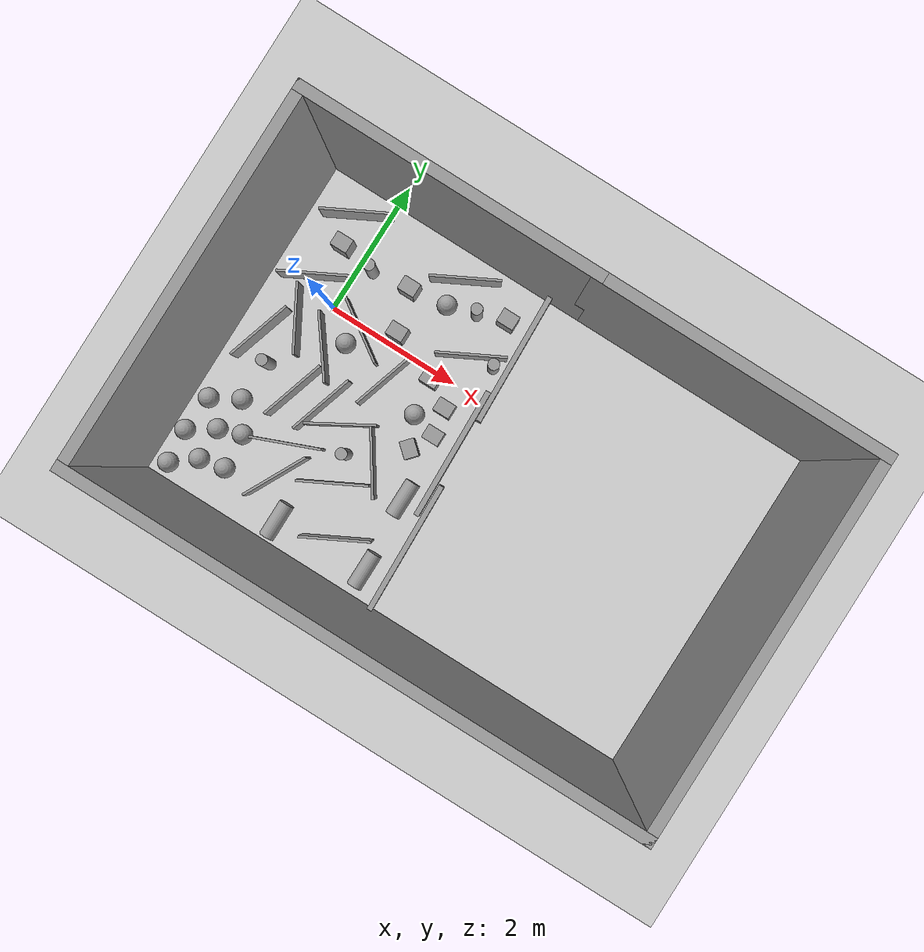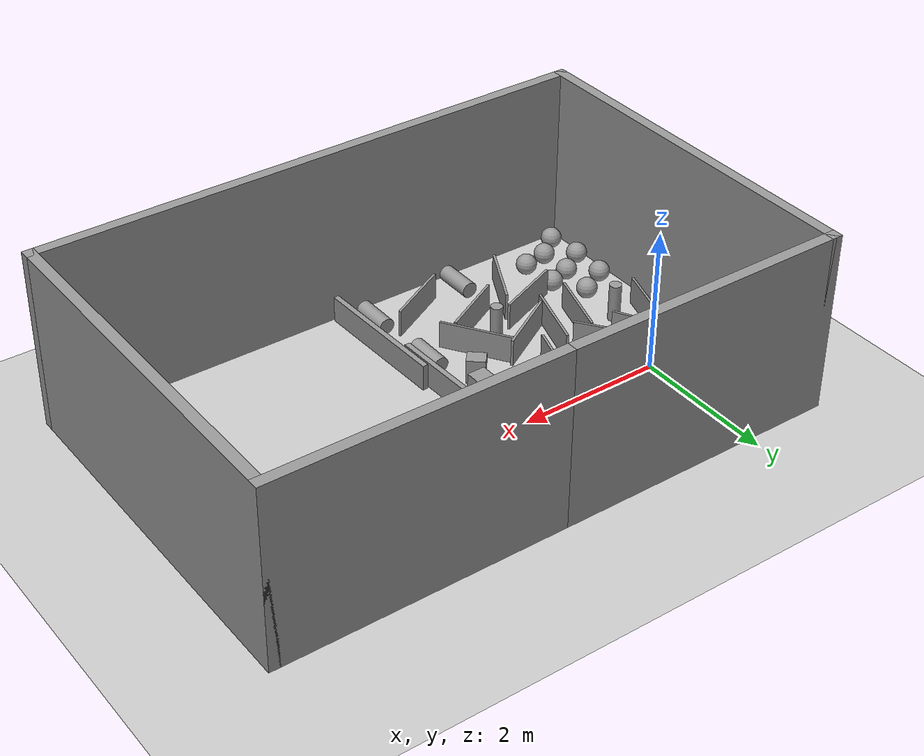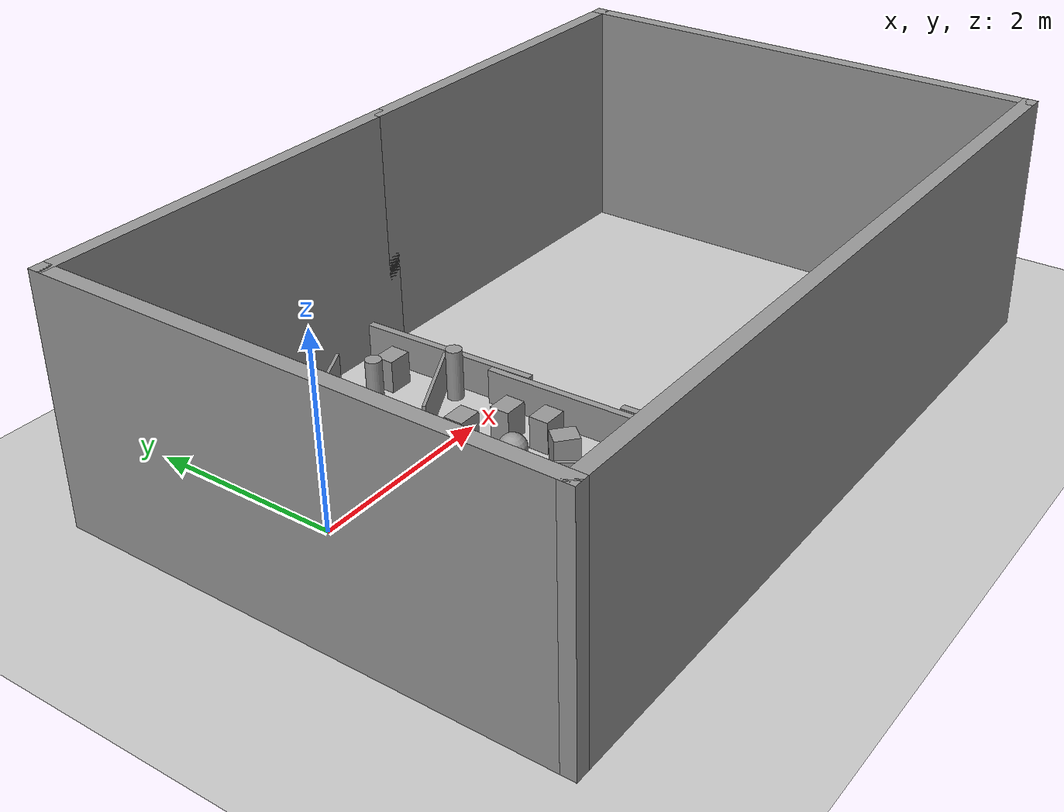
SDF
<sdf version="1.7">
 <world name="default">
  <light name="sun" type="directional">
   <pose>0 0 10 0 -0 0</pose>
   <diffuse>0.8 0.8 0.8 1</diffuse>
   <specular>0.2 0.2 0.2 1</specular>
   <attenuation>
    <range>1000</range>
    <constant>0.9</constant>
    <linear>0.01</linear>
    <quadratic>0.001</quadratic>
   </attenuation>
   <direction>-0.5 0.1 -0.9</direction>
   <spot><inner_angle>0</inner_angle><outer_angle>0</outer_angle><falloff>0</falloff></spot>
  </light>
  <model name="ground_plane">
   <static>1</static>
   <link name="link">
    <collision name="collision">
     <geometry><plane><normal>0 0 1</normal><size>100 100</size></plane></geometry>
     <surface>
      <contact><collide_bitmask>65535</collide_bitmask></contact>
      <friction><ode><mu>100</mu><mu2>50</mu2></ode></friction>
     </surface>
    </collision>
    <visual name="visual">
     <cast_shadows>0</cast_shadows>
     <geometry><plane><normal>0 0 1</normal><size>100 100</size></plane></geometry>
     <material>
      <script><uri>file://media/materials/scripts/gazebo.material</uri><name>Gazebo/Grey</name></script>
     </material>
    </visual>
   </link>
  </model>
  <gravity>0 0 -9.8</gravity>
  <magnetic_field>6e-06 2.3e-05 -4.2e-05</magnetic_field>
  <atmosphere type="adiabatic"/>
  <physics type="ode">
   <max_step_size>0.001</max_step_size>
   <real_time_factor>1</real_time_factor>
   <real_time_update_rate>1000</real_time_update_rate>
  </physics>
  <scene><ambient>0.4 0.4 0.4 1</ambient><background>0.7 0.7 0.7 1</background><shadows>1</shadows></scene>
  <spherical_coordinates>
   <surface_model>EARTH_WGS84</surface_model>
   <latitude_deg>0</latitude_deg>
   <longitude_deg>0</longitude_deg>
   <elevation>0</elevation>
   <heading_deg>0</heading_deg>
  </spherical_coordinates>
  <model name="Untitled">
   <pose>2.82907 -0.789579 0 0 -0 0</pose>
   <link name="Wall_1">
    <collision name="Wall_1_Collision">
     <geometry><box><size>4 0.15 2.5</size></box></geometry>
     <pose>0 0 1.25 0 -0 0</pose>
    </collision>
    <visual name="Wall_1_Visual">
     <pose>0 0 1.25 0 -0 0</pose>
     <geometry><box><size>4 0.15 2.5</size></box></geometry>
     <material>
      <script><uri>file://media/materials/scripts/gazebo.material</uri><name>Gazebo/Grey</name></script>
      <ambient>1 1 1 1</ambient>
     </material>
     <meta><layer>0</layer></meta>
    </visual>
    <pose>2 2.55 0 0 -0 0</pose>
   </link>
   <link name="Wall_2">
    <collision name="Wall_2_Collision">
     <geometry><box><size>5.25 0.15 2.5</size></box></geometry>
     <pose>0 0 1.25 0 -0 0</pose>
    </collision>
    <visual name="Wall_2_Visual">
     <pose>0 0 1.25 0 -0 0</pose>
     <geometry><box><size>5.25 0.15 2.5</size></box></geometry>
     <material>
      <script><uri>file://media/materials/scripts/gazebo.material</uri><name>Gazebo/Grey</name></script>
      <ambient>1 1 1 1</ambient>
     </material>
     <meta><layer>0</layer></meta>
    </visual>
    <pose>3.925 -0 0 0 -0 -1.5708</pose>
   </link>
   <link name="Wall_3">
    <collision name="Wall_3_Collision">
     <geometry><box><size>8 0.15 2.5</size></box></geometry>
     <pose>0 0 1.25 0 -0 0</pose>
    </collision>
    <visual name="Wall_3_Visual">
     <pose>0 0 1.25 0 -0 0</pose>
     <geometry><box><size>8 0.15 2.5</size></box></geometry>
     <material>
      <script><uri>file://media/materials/scripts/gazebo.material</uri><name>Gazebo/Grey</name></script>
      <ambient>1 1 1 1</ambient>
     </material>
     <meta><layer>0</layer></meta>
    </visual>
    <pose>0 -2.55 0 0 -0 3.14159</pose>
   </link>
   <link name="Wall_4">
    <collision name="Wall_4_Collision">
     <geometry><box><size>5.25 0.15 2.5</size></box></geometry>
     <pose>0 0 1.25 0 -0 0</pose>
    </collision>
    <visual name="Wall_4_Visual">
     <pose>0 0 1.25 0 -0 0</pose>
     <geometry><box><size>5.25 0.15 2.5</size></box></geometry>
     <material>
      <script><uri>file://media/materials/scripts/gazebo.material</uri><name>Gazebo/Grey</name></script>
      <ambient>1 1 1 1</ambient>
     </material>
     <meta><layer>0</layer></meta>
    </visual>
    <pose>-3.925 -0 0 0 -0 1.5708</pose>
   </link>
   <link name="Wall_5">
    <collision name="Wall_5_Collision">
     <geometry><box><size>4.15 0.15 2.5</size></box></geometry>
     <pose>0 0 1.25 0 -0 0</pose>
    </collision>
    <visual name="Wall_5_Visual">
     <pose>0 0 1.25 0 -0 0</pose>
     <geometry><box><size>4.15 0.15 2.5</size></box></geometry>
     <material>
      <script><uri>file://media/materials/scripts/gazebo.material</uri><name>Gazebo/Grey</name></script>
      <ambient>1 1 1 1</ambient>
     </material>
     <meta><layer>0</layer></meta>
    </visual>
    <pose>-1.925 2.55 0 0 -0 0</pose>
   </link>
   <static>1</static>
  </model>
  <model name="unit_box">
   <pose>0.781014 0.787474 0.172363 2e-06 3e-06 4.9e-05</pose>
   <link name="link">
    <inertial>
     <mass>1</mass>
     <inertia>
      <ixx>0.166667</ixx>
      <ixy>0</ixy>
      <ixz>0</ixz>
      <iyy>0.166667</iyy>
      <iyz>0</iyz>
      <izz>0.166667</izz>
     </inertia>
    </inertial>
    <collision name="collision">
     <geometry><box><size>0.254847 0.209614 0.344725</size></box></geometry>
    </collision>
    <visual name="visual">
     <geometry><box><size>0.254847 0.209614 0.344725</size></box></geometry>
     <material>
      <script><name>Gazebo/Grey</name><uri>file://media/materials/scripts/gazebo.material</uri></script>
     </material>
    </visual>
   </link>
  </model>
  <model name="unit_box_0_clone">
   <pose>0.211839 -0.54558 0.194903 -5.1e-05 -0 -0.933075</pose>
   <link name="link">
    <inertial>
     <mass>1</mass>
     <inertia>
      <ixx>0.166667</ixx>
      <ixy>0</ixy>
      <ixz>0</ixz>
      <iyy>0.166667</iyy>
      <iyz>0</iyz>
      <izz>0.166667</izz>
     </inertia>
    </inertial>
    <collision name="collision"><geometry><box><size>1 0.0335772 0.389805</size></box></geometry></collision>
    <visual name="visual">
     <geometry><box><size>1 0.0335772 0.389805</size></box></geometry>
     <material>
      <script><name>Gazebo/Grey</name><uri>file://media/materials/scripts/gazebo.material</uri></script>
     </material>
    </visual>
   </link>
  </model>
  <model name="unit_box_0_clone_clone_0">
   <pose>0.532205 -0.073878 0.194903 -3e-06 0 -0.593459</pose>
   <link name="link">
    <inertial>
     <mass>1</mass>
     <inertia>
      <ixx>0.166667</ixx>
      <ixy>0</ixy>
      <ixz>0</ixz>
      <iyy>0.166667</iyy>
      <iyz>0</iyz>
      <izz>0.166667</izz>
     </inertia>
    </inertial>
    <collision name="collision"><geometry><box><size>1 0.033577 0.389805</size></box></geometry></collision>
    <visual name="visual">
     <geometry><box><size>1 0.033577 0.389805</size></box></geometry>
     <material>
      <script><name>Gazebo/Grey</name><uri>file://media/materials/scripts/gazebo.material</uri></script>
     </material>
    </visual>
   </link>
  </model>
  <model name="unit_box_0_clone_clone_0_clone">
   <pose>0.624756 -1.22139 0.194903 -3e-06 -0 -1.87227</pose>
   <link name="link">
    <inertial>
     <mass>1</mass>
     <inertia>
      <ixx>0.166667</ixx>
      <ixy>0</ixy>
      <ixz>0</ixz>
      <iyy>0.166667</iyy>
      <iyz>0</iyz>
      <izz>0.166667</izz>
     </inertia>
    </inertial>
    <collision name="collision"><geometry><box><size>1 0.033577 0.389805</size></box></geometry></collision>
    <visual name="visual">
     <geometry><box><size>1 0.033577 0.389805</size></box></geometry>
     <material>
      <script><name>Gazebo/Grey</name><uri>file://media/materials/scripts/gazebo.material</uri></script>
     </material>
    </visual>
   </link>
  </model>
  <model name="unit_box_0_clone_clone_0_clone_clone">
   <pose>1.17289 -0.46809 0.194902 -2e-06 -0 -1.87231</pose>
   <link name="link">
    <inertial>
     <mass>1</mass>
     <inertia>
      <ixx>0.166667</ixx>
      <ixy>0</ixy>
      <ixz>0</ixz>
      <iyy>0.166667</iyy>
      <iyz>0</iyz>
      <izz>0.166667</izz>
     </inertia>
    </inertial>
    <collision name="collision"><geometry><box><size>1 0.033577 0.389805</size></box></geometry></collision>
    <visual name="visual">
     <geometry><box><size>1 0.033577 0.389805</size></box></geometry>
     <material>
      <script><name>Gazebo/Grey</name><uri>file://media/materials/scripts/gazebo.material</uri></script>
     </material>
    </visual>
   </link>
  </model>
  <model name="unit_box_clone">
   <pose>0.968215 0.178588 0.172363 -2e-06 2e-06 -4.1e-05</pose>
   <link name="link">
    <inertial>
     <mass>1</mass>
     <inertia>
      <ixx>0.166667</ixx>
      <ixy>0</ixy>
      <ixz>0</ixz>
      <iyy>0.166667</iyy>
      <iyz>0</iyz>
      <izz>0.166667</izz>
     </inertia>
    </inertial>
    <collision name="collision">
     <geometry><box><size>0.254847 0.209614 0.344725</size></box></geometry>
    </collision>
    <visual name="visual">
     <geometry><box><size>0.254847 0.209614 0.344725</size></box></geometry>
     <material>
      <script><name>Gazebo/Grey</name><uri>file://media/materials/scripts/gazebo.material</uri></script>
     </material>
    </visual>
   </link>
  </model>
  <model name="unit_box_clone_0">
   <pose>-0.321618 0.810767 0.172363 3e-06 -1e-06 1.6e-05</pose>
   <link name="link">
    <inertial>
     <mass>1</mass>
     <inertia>
      <ixx>0.166667</ixx>
      <ixy>0</ixy>
      <ixz>0</ixz>
      <iyy>0.166667</iyy>
      <iyz>0</iyz>
      <izz>0.166667</izz>
     </inertia>
    </inertial>
    <collision name="collision">
     <geometry><box><size>0.254847 0.209614 0.344725</size></box></geometry>
    </collision>
    <visual name="visual">
     <geometry><box><size>0.254847 0.209614 0.344725</size></box></geometry>
     <material>
      <script><name>Gazebo/Grey</name><uri>file://media/materials/scripts/gazebo.material</uri></script>
     </material>
    </visual>
   </link>
  </model>
  <light name="user_point_light_0" type="point">
   <pose>-0.771318 -3.00558 1 0 -0 0</pose>
   <diffuse>0.5 0.5 0.5 1</diffuse>
   <specular>0.1 0.1 0.1 1</specular>
   <attenuation>
    <range>20</range>
    <constant>0.5</constant>
    <linear>0.01</linear>
    <quadratic>0.001</quadratic>
   </attenuation>
   <cast_shadows>0</cast_shadows>
   <direction>0 0 -1</direction>
  </light>
  <light name="user_point_light_2" type="point">
   <pose>6.28082 -2.53213 1 0 -0 0</pose>
   <diffuse>0.5 0.5 0.5 1</diffuse>
   <specular>0.1 0.1 0.1 1</specular>
   <attenuation>
    <range>20</range>
    <constant>0.5</constant>
    <linear>0.01</linear>
    <quadratic>0.001</quadratic>
   </attenuation>
   <cast_shadows>0</cast_shadows>
   <direction>0 0 -1</direction>
  </light>
  <light name="user_point_light_3" type="point">
   <pose>5.72971 1.0461 1 0 -0 0</pose>
   <diffuse>0.5 0.5 0.5 1</diffuse>
   <specular>0.1 0.1 0.1 1</specular>
   <attenuation>
    <range>20</range>
    <constant>0.5</constant>
    <linear>0.01</linear>
    <quadratic>0.001</quadratic>
   </attenuation>
   <cast_shadows>0</cast_shadows>
   <direction>0 0 -1</direction>
  </light>
  <model name="unit_cylinder">
   <pose>2.33911 0.479942 0.269148 0 -0 4.8e-05</pose>
   <link name="link">
    <inertial>
     <mass>1</mass>
     <inertia><ixx>0.145833</ixx><ixy>0</ixy><ixz>0</ixz><iyy>0.145833</iyy><iyz>0</iyz><izz>0.125</izz></inertia>
    </inertial>
    <collision name="collision">
     <geometry><cylinder><radius>0.083259</radius><length>0.538297</length></cylinder></geometry>
    </collision>
    <visual name="visual">
     <geometry><cylinder><radius>0.083259</radius><length>0.538297</length></cylinder></geometry>
     <material>
      <script><name>Gazebo/Grey</name><uri>file://media/materials/scripts/gazebo.material</uri></script>
     </material>
    </visual>
   </link>
  </model>
  <model name="unit_cylinder_clone">
   <pose>0.199851 0.721807 0.269139 0 -0 4.8e-05</pose>
   <link name="link">
    <inertial>
     <mass>1</mass>
     <inertia><ixx>0.145833</ixx><ixy>0</ixy><ixz>0</ixz><iyy>0.145833</iyy><iyz>0</iyz><izz>0.125</izz></inertia>
    </inertial>
    <collision name="collision">
     <geometry><cylinder><radius>0.0832591</radius><length>0.538297</length></cylinder></geometry>
    </collision>
    <visual name="visual">
     <geometry><cylinder><radius>0.0832591</radius><length>0.538297</length></cylinder></geometry>
     <material>
      <script><name>Gazebo/Grey</name><uri>file://media/materials/scripts/gazebo.material</uri></script>
     </material>
    </visual>
   </link>
  </model>
  <model name="unit_box_0_clone_clone_0_clone_clone_clone">
   <pose>-0.63259 -0.81797 0.194903 1e-06 -0 -1.87229</pose>
   <link name="link">
    <inertial>
     <mass>1</mass>
     <inertia>
      <ixx>0.166667</ixx>
      <ixy>0</ixy>
      <ixz>0</ixz>
      <iyy>0.166667</iyy>
      <iyz>0</iyz>
      <izz>0.166667</izz>
     </inertia>
    </inertial>
    <collision name="collision"><geometry><box><size>1 0.033577 0.389805</size></box></geometry></collision>
    <visual name="visual">
     <geometry><box><size>1 0.033577 0.389805</size></box></geometry>
     <material>
      <script><name>Gazebo/Grey</name><uri>file://media/materials/scripts/gazebo.material</uri></script>
     </material>
    </visual>
   </link>
  </model>
  <model name="unit_box_0_clone_clone_0_clone_clone_clone_0">
   <pose>0.189195 -1.26043 0.194903 -1.3e-05 -0 -1.87231</pose>
   <link name="link">
    <inertial>
     <mass>1</mass>
     <inertia>
      <ixx>0.166667</ixx>
      <ixy>0</ixy>
      <ixz>0</ixz>
      <iyy>0.166667</iyy>
      <iyz>0</iyz>
      <izz>0.166667</izz>
     </inertia>
    </inertial>
    <collision name="collision"><geometry><box><size>1 0.033577 0.389805</size></box></geometry></collision>
    <visual name="visual">
     <geometry><box><size>1 0.033577 0.389805</size></box></geometry>
     <material>
      <script><name>Gazebo/Grey</name><uri>file://media/materials/scripts/gazebo.material</uri></script>
     </material>
    </visual>
   </link>
  </model>
  <model name="unit_box_0_clone_clone_0_clone_clone_clone_1">
   <pose>-0.298541 -0.406971 0.194903 5e-06 0 -1.06347</pose>
   <link name="link">
    <inertial>
     <mass>1</mass>
     <inertia>
      <ixx>0.166667</ixx>
      <ixy>0</ixy>
      <ixz>0</ixz>
      <iyy>0.166667</iyy>
      <iyz>0</iyz>
      <izz>0.166667</izz>
     </inertia>
    </inertial>
    <collision name="collision"><geometry><box><size>1 0.033577 0.389805</size></box></geometry></collision>
    <visual name="visual">
     <geometry><box><size>1 0.033577 0.389805</size></box></geometry>
     <material>
      <script><name>Gazebo/Grey</name><uri>file://media/materials/scripts/gazebo.material</uri></script>
     </material>
    </visual>
   </link>
  </model>
  <model name="unit_box_0_clone_clone_0_clone_clone_clone_2">
   <pose>0.989117 -1.31311 0.194903 -9e-06 0 -2.61526</pose>
   <link name="link">
    <inertial>
     <mass>1</mass>
     <inertia>
      <ixx>0.166667</ixx>
      <ixy>0</ixy>
      <ixz>0</ixz>
      <iyy>0.166667</iyy>
      <iyz>0</iyz>
      <izz>0.166667</izz>
     </inertia>
    </inertial>
    <collision name="collision"><geometry><box><size>1 0.033577 0.389805</size></box></geometry></collision>
    <visual name="visual">
     <geometry><box><size>1 0.033577 0.389805</size></box></geometry>
     <material>
      <script><name>Gazebo/Grey</name><uri>file://media/materials/scripts/gazebo.material</uri></script>
     </material>
    </visual>
   </link>
  </model>
  <model name="unit_box_0">
   <pose>2.50207 -0.833229 0.184296 1e-06 4.4e-05 -1.53859</pose>
   <link name="link">
    <inertial>
     <mass>1</mass>
     <inertia>
      <ixx>0.166667</ixx>
      <ixy>0</ixy>
      <ixz>0</ixz>
      <iyy>0.166667</iyy>
      <iyz>0</iyz>
      <izz>0.166667</izz>
     </inertia>
    </inertial>
    <collision name="collision"><geometry><box><size>1.9549 0.075737 0.368678</size></box></geometry></collision>
    <visual name="visual">
     <geometry><box><size>1.9549 0.075737 0.368678</size></box></geometry>
     <material>
      <script><name>Gazebo/Grey</name><uri>file://media/materials/scripts/gazebo.material</uri></script>
     </material>
    </visual>
   </link>
  </model>
  <model name="unit_box_0_clone_0">
   <pose>2.52996 0.707218 0.184296 -1e-06 4.4e-05 -1.53396</pose>
   <link name="link">
    <inertial>
     <mass>1</mass>
     <inertia>
      <ixx>0.166667</ixx>
      <ixy>0</ixy>
      <ixz>0</ixz>
      <iyy>0.166667</iyy>
      <iyz>0</iyz>
      <izz>0.166667</izz>
     </inertia>
    </inertial>
    <collision name="collision"><geometry><box><size>1.9549 0.075737 0.368678</size></box></geometry></collision>
    <visual name="visual">
     <geometry><box><size>1.9549 0.075737 0.368678</size></box></geometry>
     <material>
      <script><name>Gazebo/Grey</name><uri>file://media/materials/scripts/gazebo.material</uri></script>
     </material>
    </visual>
   </link>
  </model>
  <model name="unit_box_0_clone_1">
   <pose>2.64755 -2.26281 0.184296 -1e-06 -4.4e-05 -1.53854</pose>
   <link name="link">
    <inertial>
     <mass>1</mass>
     <inertia>
      <ixx>0.166667</ixx>
      <ixy>0</ixy>
      <ixz>0</ixz>
      <iyy>0.166667</iyy>
      <iyz>0</iyz>
      <izz>0.166667</izz>
     </inertia>
    </inertial>
    <collision name="collision"><geometry><box><size>1.9549 0.075737 0.368678</size></box></geometry></collision>
    <visual name="visual">
     <geometry><box><size>1.9549 0.075737 0.368678</size></box></geometry>
     <material>
      <script><name>Gazebo/Grey</name><uri>file://media/materials/scripts/gazebo.material</uri></script>
     </material>
    </visual>
   </link>
  </model>
  <model name="unit_cylinder_clone_0">
   <pose>1.75106 0.989606 0.269139 0 -0 4.8e-05</pose>
   <link name="link">
    <inertial>
     <mass>1</mass>
     <inertia><ixx>0.145833</ixx><ixy>0</ixy><ixz>0</ixz><iyy>0.145833</iyy><iyz>0</iyz><izz>0.125</izz></inertia>
    </inertial>
    <collision name="collision">
     <geometry><cylinder><radius>0.0832591</radius><length>0.538297</length></cylinder></geometry>
    </collision>
    <visual name="visual">
     <geometry><cylinder><radius>0.0832591</radius><length>0.538297</length></cylinder></geometry>
     <material>
      <script><name>Gazebo/Grey</name><uri>file://media/materials/scripts/gazebo.material</uri></script>
     </material>
    </visual>
   </link>
  </model>
  <model name="unit_cylinder_clone_1">
   <pose>-0.337686 -1.13204 0.269148 0 -0 4.8e-05</pose>
   <link name="link">
    <inertial>
     <mass>1</mass>
     <inertia><ixx>0.145833</ixx><ixy>0</ixy><ixz>0</ixz><iyy>0.145833</iyy><iyz>0</iyz><izz>0.125</izz></inertia>
    </inertial>
    <collision name="collision">
     <geometry><cylinder><radius>0.0832591</radius><length>0.538297</length></cylinder></geometry>
    </collision>
    <visual name="visual">
     <geometry><cylinder><radius>0.0832591</radius><length>0.538297</length></cylinder></geometry>
     <material>
      <script><name>Gazebo/Grey</name><uri>file://media/materials/scripts/gazebo.material</uri></script>
     </material>
    </visual>
   </link>
  </model>
  <model name="unit_sphere">
   <pose>1.76189 -0.655911 0.143711 0 -0 0</pose>
   <link name="link">
    <inertial>
     <mass>1</mass>
     <inertia><ixx>0.1</ixx><ixy>0</ixy><ixz>0</ixz><iyy>0.1</iyy><iyz>0</iyz><izz>0.1</izz></inertia>
    </inertial>
    <collision name="collision"><geometry><sphere><radius>0.143711</radius></sphere></geometry></collision>
    <visual name="visual">
     <geometry><sphere><radius>0.143711</radius></sphere></geometry>
     <material>
      <script><name>Gazebo/Grey</name><uri>file://media/materials/scripts/gazebo.material</uri></script>
     </material>
    </visual>
   </link>
  </model>
  <model name="unit_sphere_clone">
   <pose>1.33525 0.871773 0.143711 0 -0 0</pose>
   <link name="link">
    <inertial>
     <mass>1</mass>
     <inertia><ixx>0.1</ixx><ixy>0</ixy><ixz>0</ixz><iyy>0.1</iyy><iyz>0</iyz><izz>0.1</izz></inertia>
    </inertial>
    <collision name="collision"><geometry><sphere><radius>0.143711</radius></sphere></geometry></collision>
    <visual name="visual">
     <geometry><sphere><radius>0.143711</radius></sphere></geometry>
     <material>
      <script><name>Gazebo/Grey</name><uri>file://media/materials/scripts/gazebo.material</uri></script>
     </material>
    </visual>
   </link>
  </model>
  <model name="unit_sphere_clone_0">
   <pose>0.428223 -0.327342 0.143711 0 -0 0</pose>
   <link name="link">
    <inertial>
     <mass>1</mass>
     <inertia><ixx>0.1</ixx><ixy>0</ixy><ixz>0</ixz><iyy>0.1</iyy><iyz>0</iyz><izz>0.1</izz></inertia>
    </inertial>
    <collision name="collision"><geometry><sphere><radius>0.143711</radius></sphere></geometry></collision>
    <visual name="visual">
     <geometry><sphere><radius>0.143711</radius></sphere></geometry>
     <material>
      <script><name>Gazebo/Grey</name><uri>file://media/materials/scripts/gazebo.material</uri></script>
     </material>
    </visual>
   </link>
  </model>
  <model name="unit_sphere_clone_1">
   <pose>-0.44011 -2.76101 0.143711 0 -0 0</pose>
   <link name="link">
    <inertial>
     <mass>1</mass>
     <inertia><ixx>0.1</ixx><ixy>0</ixy><ixz>0</ixz><iyy>0.1</iyy><iyz>0</iyz><izz>0.1</izz></inertia>
    </inertial>
    <collision name="collision"><geometry><sphere><radius>0.143711</radius></sphere></geometry></collision>
    <visual name="visual">
     <geometry><sphere><radius>0.143711</radius></sphere></geometry>
     <material>
      <script><name>Gazebo/Grey</name><uri>file://media/materials/scripts/gazebo.material</uri></script>
     </material>
    </visual>
   </link>
  </model>
  <model name="unit_sphere_clone_2">
   <pose>-0.822451 -2.52318 0.143711 0 -0 0</pose>
   <link name="link">
    <inertial>
     <mass>1</mass>
     <inertia><ixx>0.1</ixx><ixy>0</ixy><ixz>0</ixz><iyy>0.1</iyy><iyz>0</iyz><izz>0.1</izz></inertia>
    </inertial>
    <collision name="collision"><geometry><sphere><radius>0.143711</radius></sphere></geometry></collision>
    <visual name="visual">
     <geometry><sphere><radius>0.143711</radius></sphere></geometry>
     <material>
      <script><name>Gazebo/Grey</name><uri>file://media/materials/scripts/gazebo.material</uri></script>
     </material>
    </visual>
   </link>
  </model>
  <model name="unit_sphere_clone_3">
   <pose>-0.779133 -3.03319 0.143711 0 -0 0</pose>
   <link name="link">
    <inertial>
     <mass>1</mass>
     <inertia><ixx>0.1</ixx><ixy>0</ixy><ixz>0</ixz><iyy>0.1</iyy><iyz>0</iyz><izz>0.1</izz></inertia>
    </inertial>
    <collision name="collision"><geometry><sphere><radius>0.143711</radius></sphere></geometry></collision>
    <visual name="visual">
     <geometry><sphere><radius>0.143711</radius></sphere></geometry>
     <material>
      <script><name>Gazebo/Grey</name><uri>file://media/materials/scripts/gazebo.material</uri></script>
     </material>
    </visual>
   </link>
  </model>
  <model name="unit_box_0_clone_clone_0_clone_clone_clone_2_clone">
   <pose>0.492718 -1.92874 0.194903 3e-06 -0 -2.75666</pose>
   <link name="link">
    <inertial>
     <mass>1</mass>
     <inertia>
      <ixx>0.166667</ixx>
      <ixy>0</ixy>
      <ixz>0</ixz>
      <iyy>0.166667</iyy>
      <iyz>0</iyz>
      <izz>0.166667</izz>
     </inertia>
    </inertial>
    <collision name="collision"><geometry><box><size>1 0.033577 0.389805</size></box></geometry></collision>
    <visual name="visual">
     <geometry><box><size>1 0.033577 0.389805</size></box></geometry>
     <material>
      <script><name>Gazebo/Grey</name><uri>file://media/materials/scripts/gazebo.material</uri></script>
     </material>
    </visual>
   </link>
  </model>
  <model name="unit_box_0_clone_clone_0_clone_clone_clone_2_clone_0">
   <pose>1.32916 -2.04794 0.194903 7e-06 0 -2.65697</pose>
   <link name="link">
    <inertial>
     <mass>1</mass>
     <inertia>
      <ixx>0.166667</ixx>
      <ixy>0</ixy>
      <ixz>0</ixz>
      <iyy>0.166667</iyy>
      <iyz>0</iyz>
      <izz>0.166667</izz>
     </inertia>
    </inertial>
    <collision name="collision"><geometry><box><size>1 0.033577 0.389805</size></box></geometry></collision>
    <visual name="visual">
     <geometry><box><size>1 0.033577 0.389805</size></box></geometry>
     <material>
      <script><name>Gazebo/Grey</name><uri>file://media/materials/scripts/gazebo.material</uri></script>
     </material>
    </visual>
   </link>
  </model>
  <model name="unit_box_0_clone_clone_0_clone_clone_clone_2_clone_1">
   <pose>1.64301 -1.53098 0.194903 1e-06 0 2.16007</pose>
   <link name="link">
    <inertial>
     <mass>1</mass>
     <inertia>
      <ixx>0.166667</ixx>
      <ixy>0</ixy>
      <ixz>0</ixz>
      <iyy>0.166667</iyy>
      <iyz>0</iyz>
      <izz>0.166667</izz>
     </inertia>
    </inertial>
    <collision name="collision"><geometry><box><size>1 0.033577 0.389805</size></box></geometry></collision>
    <visual name="visual">
     <geometry><box><size>1 0.033577 0.389805</size></box></geometry>
     <material>
      <script><name>Gazebo/Grey</name><uri>file://media/materials/scripts/gazebo.material</uri></script>
     </material>
    </visual>
   </link>
  </model>
  <model name="unit_box_0_clone_clone_0_clone_clone_clone_2_clone_2">
   <pose>0.612159 -2.38723 0.194903 1.2e-05 -0 -2.04457</pose>
   <link name="link">
    <inertial>
     <mass>1</mass>
     <inertia>
      <ixx>0.166667</ixx>
      <ixy>0</ixy>
      <ixz>0</ixz>
      <iyy>0.166667</iyy>
      <iyz>0</iyz>
      <izz>0.166667</izz>
     </inertia>
    </inertial>
    <collision name="collision"><geometry><box><size>1 0.033577 0.389805</size></box></geometry></collision>
    <visual name="visual">
     <geometry><box><size>1 0.033577 0.389805</size></box></geometry>
     <material>
      <script><name>Gazebo/Grey</name><uri>file://media/materials/scripts/gazebo.material</uri></script>
     </material>
    </visual>
   </link>
  </model>
  <model name="unit_box_0_clone_clone_0_clone_clone_clone_2_clone_3">
   <pose>1.76795 -2.67411 0.194903 8e-06 -0 -2.65697</pose>
   <link name="link">
    <inertial>
     <mass>1</mass>
     <inertia>
      <ixx>0.166667</ixx>
      <ixy>0</ixy>
      <ixz>0</ixz>
      <iyy>0.166667</iyy>
      <iyz>0</iyz>
      <izz>0.166667</izz>
     </inertia>
    </inertial>
    <collision name="collision"><geometry><box><size>1 0.033577 0.389805</size></box></geometry></collision>
    <visual name="visual">
     <geometry><box><size>1 0.033577 0.389805</size></box></geometry>
     <material>
      <script><name>Gazebo/Grey</name><uri>file://media/materials/scripts/gazebo.material</uri></script>
     </material>
    </visual>
   </link>
  </model>
  <model name="unit_box_0_clone_clone_0_clone_clone_clone_2_clone_4">
   <pose>2 0.445013 0.194902 2e-06 0 -2.65697</pose>
   <link name="link">
    <inertial>
     <mass>1</mass>
     <inertia>
      <ixx>0.166667</ixx>
      <ixy>0</ixy>
      <ixz>0</ixz>
      <iyy>0.166667</iyy>
      <iyz>0</iyz>
      <izz>0.166667</izz>
     </inertia>
    </inertial>
    <collision name="collision"><geometry><box><size>1 0.033577 0.389805</size></box></geometry></collision>
    <visual name="visual">
     <geometry><box><size>1 0.033577 0.389805</size></box></geometry>
     <material>
      <script><name>Gazebo/Grey</name><uri>file://media/materials/scripts/gazebo.material</uri></script>
     </material>
    </visual>
   </link>
  </model>
  <model name="unit_box_0_clone_clone_0_clone_clone_clone_2_clone_5">
   <pose>1.37626 1.28989 0.194903 -7e-06 -0 -2.65697</pose>
   <link name="link">
    <inertial>
     <mass>1</mass>
     <inertia>
      <ixx>0.166667</ixx>
      <ixy>0</ixy>
      <ixz>0</ixz>
      <iyy>0.166667</iyy>
      <iyz>0</iyz>
      <izz>0.166667</izz>
     </inertia>
    </inertial>
    <collision name="collision"><geometry><box><size>1 0.033577 0.389805</size></box></geometry></collision>
    <visual name="visual">
     <geometry><box><size>1 0.033577 0.389805</size></box></geometry>
     <material>
      <script><name>Gazebo/Grey</name><uri>file://media/materials/scripts/gazebo.material</uri></script>
     </material>
    </visual>
   </link>
  </model>
  <model name="unit_box_0_clone_clone_0_clone_clone_clone_2_clone_6">
   <pose>-0.383762 1.2643 0.194903 5e-06 -0 -2.65697</pose>
   <link name="link">
    <inertial>
     <mass>1</mass>
     <inertia>
      <ixx>0.166667</ixx>
      <ixy>0</ixy>
      <ixz>0</ixz>
      <iyy>0.166667</iyy>
      <iyz>0</iyz>
      <izz>0.166667</izz>
     </inertia>
    </inertial>
    <collision name="collision"><geometry><box><size>1 0.033577 0.389805</size></box></geometry></collision>
    <visual name="visual">
     <geometry><box><size>1 0.033577 0.389805</size></box></geometry>
     <material>
      <script><name>Gazebo/Grey</name><uri>file://media/materials/scripts/gazebo.material</uri></script>
     </material>
    </visual>
   </link>
  </model>
  <model name="unit_box_0_clone_clone_0_clone_clone_clone_2_clone_7">
   <pose>-0.423487 0.23564 0.194903 1.1e-05 0 -2.65697</pose>
   <link name="link">
    <inertial>
     <mass>1</mass>
     <inertia>
      <ixx>0.166667</ixx>
      <ixy>0</ixy>
      <ixz>0</ixz>
      <iyy>0.166667</iyy>
      <iyz>0</iyz>
      <izz>0.166667</izz>
     </inertia>
    </inertial>
    <collision name="collision"><geometry><box><size>1 0.033577 0.389805</size></box></geometry></collision>
    <visual name="visual">
     <geometry><box><size>1 0.033577 0.389805</size></box></geometry>
     <material>
      <script><name>Gazebo/Grey</name><uri>file://media/materials/scripts/gazebo.material</uri></script>
     </material>
    </visual>
   </link>
  </model>
  <light name="user_point_light_1" type="point">
   <pose>4.38782 -3.1318 1 0 -0 0</pose>
   <diffuse>0.5 0.5 0.5 1</diffuse>
   <specular>0.1 0.1 0.1 1</specular>
   <attenuation>
    <range>20</range>
    <constant>0.5</constant>
    <linear>0.01</linear>
    <quadratic>0.001</quadratic>
   </attenuation>
   <cast_shadows>0</cast_shadows>
   <direction>0 0 -1</direction>
  </light>
  <model name="unit_cylinder_clone_0_clone">
   <pose>2.24824 -1.73384 0.111614 -1.5708 0.010321 -0.0021</pose>
   <link name="link">
    <inertial>
     <mass>1</mass>
     <inertia><ixx>0.145833</ixx><ixy>0</ixy><ixz>0</ixz><iyy>0.145833</iyy><iyz>0</iyz><izz>0.125</izz></inertia>
    </inertial>
    <collision name="collision">
     <geometry><cylinder><radius>0.111614</radius><length>0.538297</length></cylinder></geometry>
    </collision>
    <visual name="visual">
     <geometry><cylinder><radius>0.111614</radius><length>0.538297</length></cylinder></geometry>
     <material>
      <script><name>Gazebo/Grey</name><uri>file://media/materials/scripts/gazebo.material</uri></script>
     </material>
    </visual>
   </link>
  </model>
  <model name="unit_cylinder_clone_0_clone_clone">
   <pose>0.922423 -2.91796 0.111614 -1.5708 0 4.9e-05</pose>
   <link name="link">
    <inertial>
     <mass>1</mass>
     <inertia><ixx>0.145833</ixx><ixy>0</ixy><ixz>0</ixz><iyy>0.145833</iyy><iyz>0</iyz><izz>0.125</izz></inertia>
    </inertial>
    <collision name="collision">
     <geometry><cylinder><radius>0.111614</radius><length>0.538297</length></cylinder></geometry>
    </collision>
    <visual name="visual">
     <geometry><cylinder><radius>0.111614</radius><length>0.538297</length></cylinder></geometry>
     <material>
      <script><name>Gazebo/Grey</name><uri>file://media/materials/scripts/gazebo.material</uri></script>
     </material>
    </visual>
   </link>
  </model>
  <model name="unit_cylinder_clone_0_clone_clone_0">
   <pose>2.32118 -2.85076 0.111614 -1.5708 0 4.9e-05</pose>
   <link name="link">
    <inertial>
     <mass>1</mass>
     <inertia><ixx>0.145833</ixx><ixy>0</ixy><ixz>0</ixz><iyy>0.145833</iyy><iyz>0</iyz><izz>0.125</izz></inertia>
    </inertial>
    <collision name="collision">
     <geometry><cylinder><radius>0.111614</radius><length>0.538297</length></cylinder></geometry>
    </collision>
    <visual name="visual">
     <geometry><cylinder><radius>0.111614</radius><length>0.538297</length></cylinder></geometry>
     <material>
      <script><name>Gazebo/Grey</name><uri>file://media/materials/scripts/gazebo.material</uri></script>
     </material>
    </visual>
   </link>
  </model>
  <model name="unit_sphere_clone_2_clone">
   <pose>-0.445073 -2.27446 0.143711 0 -0 0</pose>
   <link name="link">
    <inertial>
     <mass>1</mass>
     <inertia><ixx>0.1</ixx><ixy>0</ixy><ixz>0</ixz><iyy>0.1</iyy><iyz>0</iyz><izz>0.1</izz></inertia>
    </inertial>
    <collision name="collision"><geometry><sphere><radius>0.143711</radius></sphere></geometry></collision>
    <visual name="visual">
     <geometry><sphere><radius>0.143711</radius></sphere></geometry>
     <material>
      <script><name>Gazebo/Grey</name><uri>file://media/materials/scripts/gazebo.material</uri></script>
     </material>
    </visual>
   </link>
  </model>
  <model name="unit_sphere_clone_2_clone_0">
   <pose>-0.070125 -2.68507 0.143711 0 -0 0</pose>
   <link name="link">
    <inertial>
     <mass>1</mass>
     <inertia><ixx>0.1</ixx><ixy>0</ixy><ixz>0</ixz><iyy>0.1</iyy><iyz>0</iyz><izz>0.1</izz></inertia>
    </inertial>
    <collision name="collision"><geometry><sphere><radius>0.143711</radius></sphere></geometry></collision>
    <visual name="visual">
     <geometry><sphere><radius>0.143711</radius></sphere></geometry>
     <material>
      <script><name>Gazebo/Grey</name><uri>file://media/materials/scripts/gazebo.material</uri></script>
     </material>
    </visual>
   </link>
  </model>
  <model name="unit_sphere_clone_2_clone_1">
   <pose>-0.109201 -2.15996 0.143711 0.007979 -0.017403 -0.006379</pose>
   <link name="link">
    <inertial>
     <mass>1</mass>
     <inertia><ixx>0.1</ixx><ixy>0</ixy><ixz>0</ixz><iyy>0.1</iyy><iyz>0</iyz><izz>0.1</izz></inertia>
    </inertial>
    <collision name="collision"><geometry><sphere><radius>0.143711</radius></sphere></geometry></collision>
    <visual name="visual">
     <geometry><sphere><radius>0.143711</radius></sphere></geometry>
     <material>
      <script><name>Gazebo/Grey</name><uri>file://media/materials/scripts/gazebo.material</uri></script>
     </material>
    </visual>
   </link>
  </model>
  <model name="unit_sphere_clone_2_clone_2">
   <pose>-0.779311 -1.97756 0.143711 0 -0 0</pose>
   <link name="link">
    <inertial>
     <mass>1</mass>
     <inertia><ixx>0.1</ixx><ixy>0</ixy><ixz>0</ixz><iyy>0.1</iyy><iyz>0</iyz><izz>0.1</izz></inertia>
    </inertial>
    <collision name="collision"><geometry><sphere><radius>0.143711</radius></sphere></geometry></collision>
    <visual name="visual">
     <geometry><sphere><radius>0.143711</radius></sphere></geometry>
     <material>
      <script><name>Gazebo/Grey</name><uri>file://media/materials/scripts/gazebo.material</uri></script>
     </material>
    </visual>
   </link>
  </model>
  <model name="unit_sphere_clone_2_clone_3">
   <pose>-0.376256 -1.74906 0.143711 0 -0 0</pose>
   <link name="link">
    <inertial>
     <mass>1</mass>
     <inertia><ixx>0.1</ixx><ixy>0</ixy><ixz>0</ixz><iyy>0.1</iyy><iyz>0</iyz><izz>0.1</izz></inertia>
    </inertial>
    <collision name="collision"><geometry><sphere><radius>0.143711</radius></sphere></geometry></collision>
    <visual name="visual">
     <geometry><sphere><radius>0.143711</radius></sphere></geometry>
     <material>
      <script><name>Gazebo/Grey</name><uri>file://media/materials/scripts/gazebo.material</uri></script>
     </material>
    </visual>
   </link>
  </model>
  <model name="unit_box_clone_0_clone">
   <pose>1.69556 -0.117513 0.172363 -3e-06 -1e-06 2.8e-05</pose>
   <link name="link">
    <inertial>
     <mass>1</mass>
     <inertia>
      <ixx>0.166667</ixx>
      <ixy>0</ixy>
      <ixz>0</ixz>
      <iyy>0.166667</iyy>
      <iyz>0</iyz>
      <izz>0.166667</izz>
     </inertia>
    </inertial>
    <collision name="collision">
     <geometry><box><size>0.254847 0.209614 0.344725</size></box></geometry>
    </collision>
    <visual name="visual">
     <geometry><box><size>0.254847 0.209614 0.344725</size></box></geometry>
     <material>
      <script><name>Gazebo/Grey</name><uri>file://media/materials/scripts/gazebo.material</uri></script>
     </material>
    </visual>
   </link>
  </model>
  <model name="unit_box_clone_0_clone_0">
   <pose>1.96506 -1.09365 0.172363 -3e-06 -1e-06 -0.717186</pose>
   <link name="link">
    <inertial>
     <mass>1</mass>
     <inertia>
      <ixx>0.166667</ixx>
      <ixy>0</ixy>
      <ixz>0</ixz>
      <iyy>0.166667</iyy>
      <iyz>0</iyz>
      <izz>0.166667</izz>
     </inertia>
    </inertial>
    <collision name="collision">
     <geometry><box><size>0.254847 0.209614 0.344725</size></box></geometry>
    </collision>
    <visual name="visual">
     <geometry><box><size>0.254847 0.209614 0.344725</size></box></geometry>
     <material>
      <script><name>Gazebo/Grey</name><uri>file://media/materials/scripts/gazebo.material</uri></script>
     </material>
    </visual>
   </link>
  </model>
  <model name="unit_box_clone_0_clone_clone">
   <pose>2.14564 -0.759548 0.172362 -3e-06 4e-06 2.7e-05</pose>
   <link name="link">
    <inertial>
     <mass>1</mass>
     <inertia>
      <ixx>0.166667</ixx>
      <ixy>0</ixy>
      <ixz>0</ixz>
      <iyy>0.166667</iyy>
      <iyz>0</iyz>
      <izz>0.166667</izz>
     </inertia>
    </inertial>
    <collision name="collision">
     <geometry><box><size>0.254847 0.209614 0.344725</size></box></geometry>
    </collision>
    <visual name="visual">
     <geometry><box><size>0.254847 0.209614 0.344725</size></box></geometry>
     <material>
      <script><name>Gazebo/Grey</name><uri>file://media/materials/scripts/gazebo.material</uri></script>
     </material>
    </visual>
   </link>
  </model>
  <model name="unit_box_clone_0_clone_clone_0">
   <pose>2.07518 -0.361329 0.172363 -4e-06 -1e-06 2.7e-05</pose>
   <link name="link">
    <inertial>
     <mass>1</mass>
     <inertia>
      <ixx>0.166667</ixx>
      <ixy>0</ixy>
      <ixz>0</ixz>
      <iyy>0.166667</iyy>
      <iyz>0</iyz>
      <izz>0.166667</izz>
     </inertia>
    </inertial>
    <collision name="collision">
     <geometry><box><size>0.254847 0.209614 0.344725</size></box></geometry>
    </collision>
    <visual name="visual">
     <geometry><box><size>0.254847 0.209614 0.344725</size></box></geometry>
     <material>
      <script><name>Gazebo/Grey</name><uri>file://media/materials/scripts/gazebo.material</uri></script>
     </material>
    </visual>
   </link>
  </model>
  <model name="unit_box_clone_0_clone_clone_1">
   <pose>2.16983 1.13121 0.172362 -2e-06 6e-06 2.6e-05</pose>
   <link name="link">
    <inertial>
     <mass>1</mass>
     <inertia>
      <ixx>0.166667</ixx>
      <ixy>0</ixy>
      <ixz>0</ixz>
      <iyy>0.166667</iyy>
      <iyz>0</iyz>
      <izz>0.166667</izz>
     </inertia>
    </inertial>
    <collision name="collision">
     <geometry><box><size>0.254847 0.209614 0.344725</size></box></geometry>
    </collision>
    <visual name="visual">
     <geometry><box><size>0.254847 0.209614 0.344725</size></box></geometry>
     <material>
      <script><name>Gazebo/Grey</name><uri>file://media/materials/scripts/gazebo.material</uri></script>
     </material>
    </visual>
   </link>
  </model>
  <model name="unit_cylinder_clone_0_clone_0">
   <pose>1.24443 -1.63198 0.269139 0 -0 4.8e-05</pose>
   <link name="link">
    <inertial>
     <mass>1</mass>
     <inertia><ixx>0.145833</ixx><ixy>0</ixy><ixz>0</ixz><iyy>0.145833</iyy><iyz>0</iyz><izz>0.125</izz></inertia>
    </inertial>
    <collision name="collision">
     <geometry><cylinder><radius>0.0832591</radius><length>0.538297</length></cylinder></geometry>
    </collision>
    <visual name="visual">
     <geometry><cylinder><radius>0.0832591</radius><length>0.538297</length></cylinder></geometry>
     <material>
      <script><name>Gazebo/Grey</name><uri>file://media/materials/scripts/gazebo.material</uri></script>
     </material>
    </visual>
   </link>
  </model>
 </world>
</sdf>
